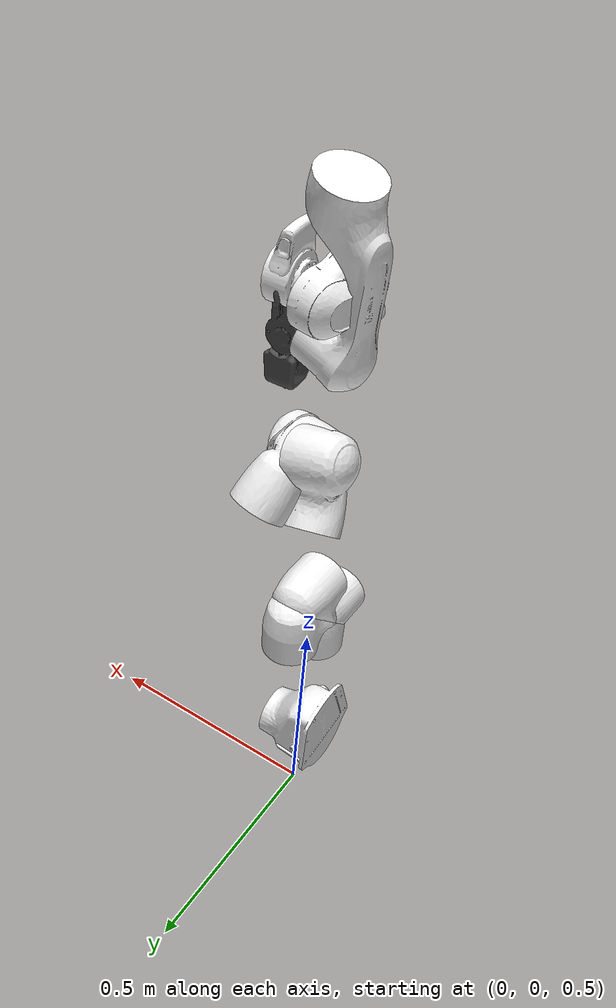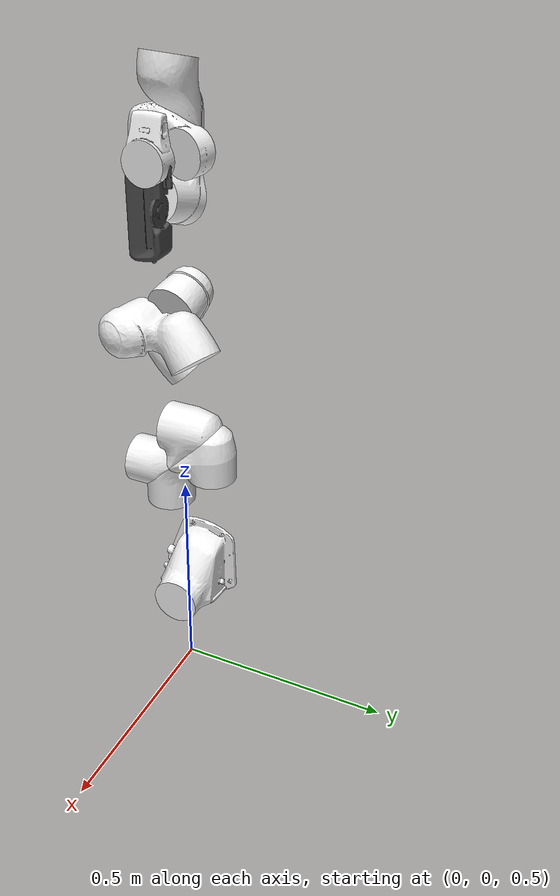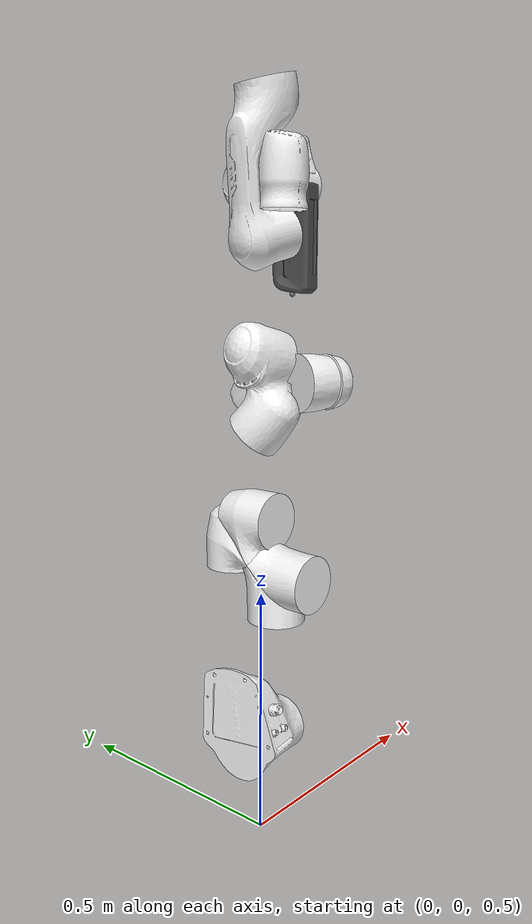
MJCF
<mujoco model="franka_panda">
  <compiler angle="radian" meshdir="objs" autolimits="true"/>
  <option timestep="0.002" gravity="0 0 -9.81"/>

  <default>
    <joint damping="1.0" armature="0.1"/>
    <geom contype="1" conaffinity="1" density="1000"/>
  </default>

  <asset>
    <mesh name="base" file="robot_base.obj"/>
    <mesh name="link1" file="Panda_link1_respondable.obj"/>
    <mesh name="link2" file="Panda_link2_respondable.obj"/>
    <mesh name="link3" file="Panda_link3_respondable.obj"/>
    <mesh name="link4" file="Panda_link4_respondable.obj"/>
    <mesh name="link5" file="Panda_link5_respondable.obj"/>
    <mesh name="link6" file="Panda_link6_respondable.obj"/>
    <mesh name="link7" file="Panda_link7_respondable.obj"/>
    <mesh name="gripper" file="Panda_gripper_visual.obj"/>
  </asset>

  <worldbody>
    <body name="robot_base" pos="0 0 0.75">
      <geom name="robot_base_geom" type="mesh" mesh="base" rgba="0.95 0.95 0.95 1"/>
      <body name="link1" pos="0 0 0.333">
        <joint name="joint1" type="hinge" axis="0 0 1" range="-2.8973 2.8973"/>
        <geom name="link1_geom" type="mesh" mesh="link1" rgba="0.95 0.95 0.95 1"/>
        <body name="link2" pos="0 0 0" quat="0.7071068 -0.7071068 0 0">
          <joint name="joint2" type="hinge" axis="0 0 1" range="-1.7628 1.7628"/>
          <geom name="link2_geom" type="mesh" mesh="link2" rgba="0.95 0.95 0.95 1"/>
          <body name="link3" pos="0 -0.316 0" quat="0.7071068 0.7071068 0 0">
            <joint name="joint3" type="hinge" axis="0 0 1" range="-2.8973 2.8973"/>
            <geom name="link3_geom" type="mesh" mesh="link3" rgba="0.95 0.95 0.95 1"/>
            <body name="link4" pos="0.0825 0 0" quat="0.7071068 0.7071068 0 0">
              <joint name="joint4" type="hinge" axis="0 0 1" range="-3.0718 -0.0698"/>
              <geom name="link4_geom" type="mesh" mesh="link4" rgba="0.95 0.95 0.95 1"/>
              <body name="link5" pos="-0.0825 0.384 0" quat="0.7071068 -0.7071068 0 0">
                <joint name="joint5" type="hinge" axis="0 0 1" range="-2.8973 2.8973"/>
                <geom name="link5_geom" type="mesh" mesh="link5" rgba="0.95 0.95 0.95 1"/>
                <body name="link6" pos="0 0 0" quat="0.7071068 0.7071068 0 0">
                  <joint name="joint6" type="hinge" axis="0 0 1" range="-0.0175 3.7525"/>
                  <geom name="link6_geom" type="mesh" mesh="link6" rgba="0.95 0.95 0.95 1"/>
                  <body name="link7" pos="0.088 0 0" quat="0.7071068 0.7071068 0 0">
                    <joint name="joint7" type="hinge" axis="0 0 1" range="-2.8973 2.8973"/>
                    <geom name="link7_geom" type="mesh" mesh="link7" rgba="0.95 0.95 0.95 1"/>
                    <body name="ee" pos="0 0 0.107">
                      <geom name="gripper_geom" type="mesh" mesh="gripper" rgba="0.3 0.3 0.3 1"/>
                      <site name="tcp" pos="0 0 0.1034"/>
                    </body>
                  </body>
                </body>
              </body>
            </body>
          </body>
        </body>
      </body>
    </body>
  </worldbody>
</mujoco>
